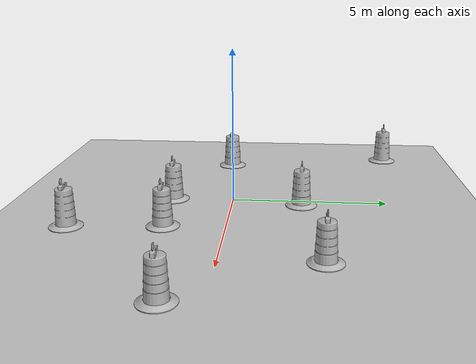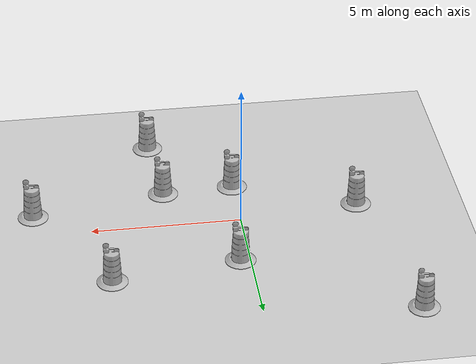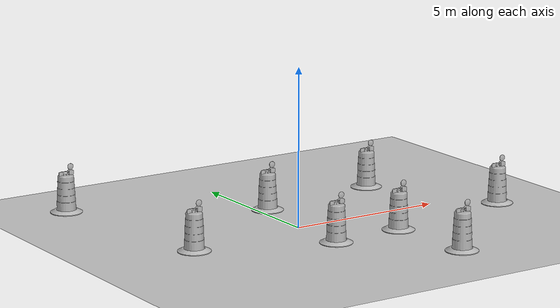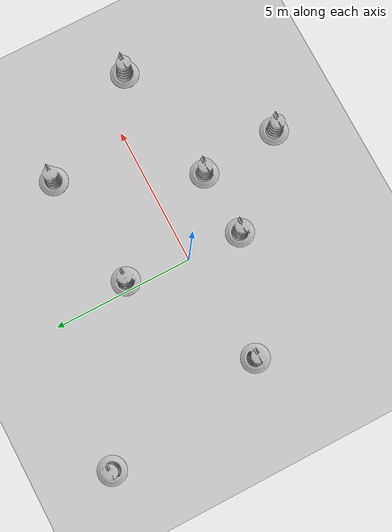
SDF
<sdf version="1.7">
 <world name="default">
  <light name="sun" type="directional">
   <pose>0 0 10 0 -0 0</pose>
   <diffuse>0.8 0.8 0.8 1</diffuse>
   <specular>0.2 0.2 0.2 1</specular>
   <attenuation>
    <range>1000</range>
    <constant>0.9</constant>
    <linear>0.01</linear>
    <quadratic>0.001</quadratic>
   </attenuation>
   <direction>-0.5 0.1 -0.9</direction>
   <spot><inner_angle>0</inner_angle><outer_angle>0</outer_angle><falloff>0</falloff></spot>
  </light>
  <model name="ground_plane">
   <static>1</static>
   <link name="link">
    <collision name="collision">
     <geometry><plane><normal>0 0 1</normal><size>100 100</size></plane></geometry>
     <surface><friction><ode><mu>100</mu><mu2>50</mu2></ode></friction></surface>
    </collision>
    <visual name="visual">
     <cast_shadows>0</cast_shadows>
     <geometry><plane><normal>0 0 1</normal><size>100 100</size></plane></geometry>
     <material>
      <script><uri>file://media/materials/scripts/gazebo.material</uri><name>Gazebo/Grey</name></script>
     </material>
    </visual>
   </link>
  </model>
  <gravity>0 0 -9.8</gravity>
  <magnetic_field>6e-06 2.3e-05 -4.2e-05</magnetic_field>
  <atmosphere type="adiabatic"/>
  <physics type="ode">
   <max_step_size>0.001</max_step_size>
   <real_time_factor>1</real_time_factor>
   <real_time_update_rate>1000</real_time_update_rate>
  </physics>
  <scene><ambient>0.4 0.4 0.4 1</ambient><background>0.7 0.7 0.7 1</background><shadows>1</shadows></scene>
  <audio><device>default</device></audio>
  <spherical_coordinates>
   <surface_model>EARTH_WGS84</surface_model>
   <latitude_deg>0</latitude_deg>
   <longitude_deg>0</longitude_deg>
   <elevation>0</elevation>
   <heading_deg>0</heading_deg>
  </spherical_coordinates>
  <model name="Construction Barrel">
   <link name="link">
    <inertial>
     <pose>0 0 0.4 0 -0 0</pose>
     <mass>500</mass>
     <inertia><ixx>51.2096</ixx><iyy>51.2096</iyy><izz>25</izz><ixy>0</ixy><ixz>0</ixz><iyz>0</iyz></inertia>
    </inertial>
    <collision name="collision">
     <geometry><mesh><uri>model://construction_barrel/meshes/construction_barrel.dae</uri></mesh></geometry>
    </collision>
    <visual name="visual">
     <geometry><mesh><uri>model://construction_barrel/meshes/construction_barrel.dae</uri></mesh></geometry>
    </visual>
   </link>
   <pose>-3.98197 -0.419468 -1e-06 1e-06 -9e-06 -2.1e-05</pose>
  </model>
  <model name="Construction Barrel_clone">
   <link name="link">
    <inertial>
     <pose>0 0 0.4 0 -0 0</pose>
     <mass>500</mass>
     <inertia><ixx>51.2096</ixx><iyy>51.2096</iyy><izz>25</izz><ixy>0</ixy><ixz>0</ixz><iyz>0</iyz></inertia>
    </inertial>
    <collision name="collision">
     <geometry><mesh><uri>model://construction_barrel/meshes/construction_barrel.dae</uri></mesh></geometry>
    </collision>
    <visual name="visual">
     <geometry><mesh><uri>model://construction_barrel/meshes/construction_barrel.dae</uri></mesh></geometry>
    </visual>
   </link>
   <pose>0.026408 -1.98652 -0 0 0 -1.9e-05</pose>
  </model>
  <model name="Construction Barrel_clone_0">
   <link name="link">
    <inertial>
     <pose>0 0 0.4 0 -0 0</pose>
     <mass>500</mass>
     <inertia><ixx>51.2096</ixx><iyy>51.2096</iyy><izz>25</izz><ixy>0</ixy><ixz>0</ixz><iyz>0</iyz></inertia>
    </inertial>
    <collision name="collision">
     <geometry><mesh><uri>model://construction_barrel/meshes/construction_barrel.dae</uri></mesh></geometry>
    </collision>
    <visual name="visual">
     <geometry><mesh><uri>model://construction_barrel/meshes/construction_barrel.dae</uri></mesh></geometry>
    </visual>
   </link>
   <pose>2.40743 -1.87487 -2e-06 -6e-06 -4e-06 -1.8e-05</pose>
  </model>
  <model name="Construction Barrel_clone_1">
   <link name="link">
    <inertial>
     <pose>0 0 0.4 0 -0 0</pose>
     <mass>500</mass>
     <inertia><ixx>51.2096</ixx><iyy>51.2096</iyy><izz>25</izz><ixy>0</ixy><ixz>0</ixz><iyz>0</iyz></inertia>
    </inertial>
    <collision name="collision">
     <geometry><mesh><uri>model://construction_barrel/meshes/construction_barrel.dae</uri></mesh></geometry>
    </collision>
    <visual name="visual">
     <geometry><mesh><uri>model://construction_barrel/meshes/construction_barrel.dae</uri></mesh></geometry>
    </visual>
   </link>
   <pose>2.63542 -4.73463 -0 0 0 -1.5e-05</pose>
  </model>
  <model name="Construction Barrel_clone_2">
   <link name="link">
    <inertial>
     <pose>0 0 0.4 0 -0 0</pose>
     <mass>500</mass>
     <inertia><ixx>51.2096</ixx><iyy>51.2096</iyy><izz>25</izz><ixy>0</ixy><ixz>0</ixz><iyz>0</iyz></inertia>
    </inertial>
    <collision name="collision">
     <geometry><mesh><uri>model://construction_barrel/meshes/construction_barrel.dae</uri></mesh></geometry>
    </collision>
    <visual name="visual">
     <geometry><mesh><uri>model://construction_barrel/meshes/construction_barrel.dae</uri></mesh></geometry>
    </visual>
   </link>
   <pose>-5.04559 5.49992 -0 0 0 -1.7e-05</pose>
  </model>
  <model name="Construction Barrel_clone_3">
   <link name="link">
    <inertial>
     <pose>0 0 0.4 0 -0 0</pose>
     <mass>500</mass>
     <inertia><ixx>51.2096</ixx><iyy>51.2096</iyy><izz>25</izz><ixy>0</ixy><ixz>0</ixz><iyz>0</iyz></inertia>
    </inertial>
    <collision name="collision">
     <geometry><mesh><uri>model://construction_barrel/meshes/construction_barrel.dae</uri></mesh></geometry>
    </collision>
    <visual name="visual">
     <geometry><mesh><uri>model://construction_barrel/meshes/construction_barrel.dae</uri></mesh></geometry>
    </visual>
   </link>
   <pose>4.56747 2.84352 0 0 1e-06 -1.4e-05</pose>
  </model>
  <model name="Construction Barrel_clone_4">
   <link name="link">
    <inertial>
     <pose>0 0 0.4 0 -0 0</pose>
     <mass>500</mass>
     <inertia><ixx>51.2096</ixx><iyy>51.2096</iyy><izz>25</izz><ixy>0</ixy><ixz>0</ixz><iyz>0</iyz></inertia>
    </inertial>
    <collision name="collision">
     <geometry><mesh><uri>model://construction_barrel/meshes/construction_barrel.dae</uri></mesh></geometry>
    </collision>
    <visual name="visual">
     <geometry><mesh><uri>model://construction_barrel/meshes/construction_barrel.dae</uri></mesh></geometry>
    </visual>
   </link>
   <pose>0.333932 2.23392 1e-06 1e-06 2e-06 -1.1e-05</pose>
  </model>
  <model name="Construction Barrel_clone_5">
   <link name="link">
    <inertial>
     <pose>0 0 0.4 0 -0 0</pose>
     <mass>500</mass>
     <inertia><ixx>51.2096</ixx><iyy>51.2096</iyy><izz>25</izz><ixy>0</ixy><ixz>0</ixz><iyz>0</iyz></inertia>
    </inertial>
    <collision name="collision">
     <geometry><mesh><uri>model://construction_barrel/meshes/construction_barrel.dae</uri></mesh></geometry>
    </collision>
    <visual name="visual">
     <geometry><mesh><uri>model://construction_barrel/meshes/construction_barrel.dae</uri></mesh></geometry>
    </visual>
   </link>
   <pose>6.86857 -1.08127 -1e-06 1e-06 -9e-06 -1.1e-05</pose>
  </model>
 </world>
</sdf>
